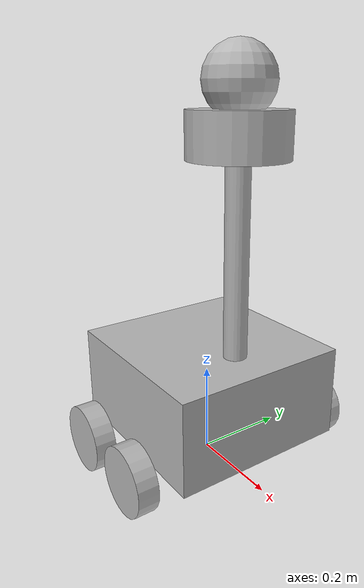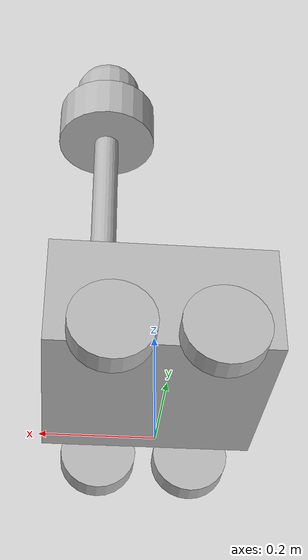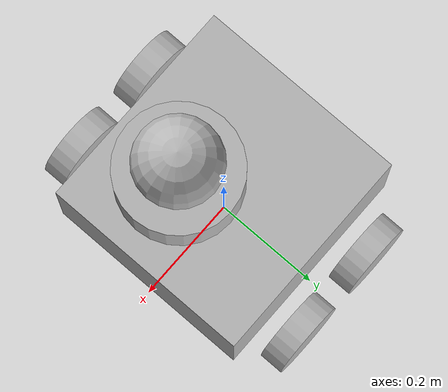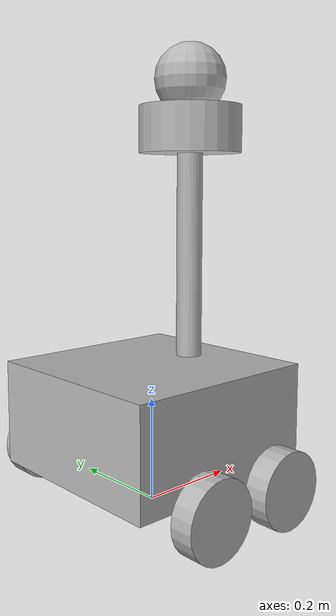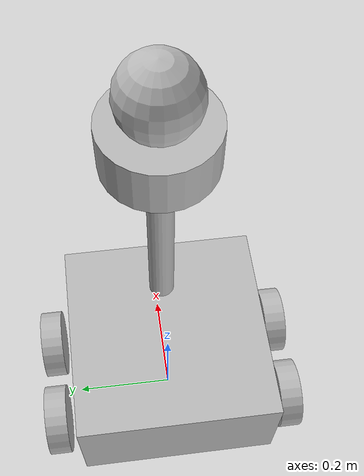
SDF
<?xml version='1.0'?>
<sdf version='1.4'>

  <model name="DelbonoKobra">

    <static>false</static>
    <link name='chassis'>

      <inertial>
        <mass>9</mass>
        <inertia>
          <ixx>9</ixx>
          <ixy></ixy>
          <ixz></ixz>
          <iyy>9</iyy>
          <iyz></iyz>
          <izz>9</izz>
        </inertia>
      </inertial>

      <pose>0 0 .1725 0 0 0</pose>
      <collision name='body'>
        <geometry>
          <box>
            <size>.4 .39 .2</size>
          </box>
        </geometry>
      </collision>

      <visual name='body'>
        <geometry>
          <box>
            <size>.4 .39 .2</size>
          </box>
        </geometry>
      </visual>

      <collision name='vert_arm'>
        <pose>.1 0 .3 0 0 0</pose>
        <geometry>
          <cylinder>
            <radius>.025</radius>
            <length>.4</length>
          </cylinder>
        </geometry>
      </collision>

      <visual name='vert_arm'>
        <pose>.1 0 .3 0 0 0</pose>
        <geometry>
          <cylinder>
            <radius>.025</radius>
            <length>.4</length>
          </cylinder>
        </geometry>
      </visual>

    </link>

    <link name='left_forw_wheel'>
      <pose>.09 .2475 .0725 0 1.5707 1.5707</pose>

      <inertial>
        <mass>1</mass>
        <inertia>
          <ixx>1</ixx>
          <ixy></ixy>
          <ixz></ixz>
          <iyy>1</iyy>
          <iyz></iyz>
          <izz>1</izz>
        </inertia>
      </inertial>

      <collision name='collision'>
        <geometry>
          <cylinder>
            <radius>.0725</radius>
            <length>.045</length>
          </cylinder>
        </geometry>
      </collision>

      <visual name='visual'>
        <geometry>
          <cylinder>
            <radius>.0725</radius>
            <length>.045</length>
          </cylinder>
        </geometry>
      </visual>
    </link>

    <joint type="revolute" name="left_forw_wheel_hinge">
      <pose>0 0 .0725 0 0 0</pose>
      <child>left_forw_wheel</child>
      <parent>chassis</parent>
      <axis>
        <xyz>0 1 0</xyz>
      </axis>
    </joint>

    <link name='right_forw_wheel'>
      <pose>.09 -0.2475 .0725 0 1.5707 1.5707</pose>

      <inertial>
        <mass>1</mass>
        <inertia>
          <ixx>1</ixx>
          <ixy></ixy>
          <ixz></ixz>
          <iyy>1</iyy>
          <iyz></iyz>
          <izz>1</izz>
        </inertia>
      </inertial>

      <collision name='collision'>
        <geometry>
          <cylinder>
            <radius>.0725</radius>
            <length>.045</length>
          </cylinder>
        </geometry>
        <surface>
          <friction>
            <ode>
              <mu>1</mu>
              <mu2>1</mu2>
              <slip1>0</slip1>
              <slip2>0</slip2>
            </ode>
          </friction>
        </surface>
      </collision>

      <visual name='visual'>
        <geometry>
          <cylinder>
            <radius>.0725</radius>
            <length>.045</length>
          </cylinder>
        </geometry>
      </visual>
    </link>

    <joint type="revolute" name="right_forw_wheel_hinge">
      <pose>0 0 .0725 0 0 0</pose>
      <child>right_forw_wheel</child>
      <parent>chassis</parent>
      <axis>
        <xyz>0 1 0</xyz>
      </axis>
    </joint>

    <link name='left_back_wheel'>
      <pose>-0.09 .2475 .0725 0 1.5707 1.5707</pose>

      <inertial>
        <mass>1</mass>
        <inertia>
          <ixx>1</ixx>
          <ixy></ixy>
          <ixz></ixz>
          <iyy>1</iyy>
          <iyz></iyz>
          <izz>1</izz>
        </inertia>
      </inertial>

      <collision name='collision'>
        <geometry>
          <cylinder>
            <radius>.0725</radius>
            <length>.045</length>
          </cylinder>
        </geometry>
        <surface>
          <friction>
            <ode>
              <mu>1</mu>
              <mu2>1</mu2>
              <slip1>0</slip1>
              <slip2>0</slip2>
            </ode>
          </friction>
        </surface>
      </collision>
      <visual name='visual'>
        <geometry>
          <cylinder>
            <radius>.0725</radius>
            <length>.045</length>
          </cylinder>
        </geometry>
      </visual>
    </link>

    <joint type="revolute" name="left_back_wheel_hinge">
      <pose>0 0 .0725 0 0 0</pose>
      <child>left_back_wheel</child>
      <parent>chassis</parent>
      <axis>
        <xyz>0 1 0</xyz>
      </axis>
    </joint>

    <link name='right_back_wheel'>
      <pose>-0.09 -0.2475 .0725 0 1.5707 1.5707</pose>

      <inertial>
        <mass>1</mass>
        <inertia>
          <ixx>1</ixx>
          <ixy></ixy>
          <ixz></ixz>
          <iyy>1</iyy>
          <iyz></iyz>
          <izz>1</izz>
        </inertia>
      </inertial>

      <collision name='collision'>
        <geometry>
          <cylinder>
            <radius>.0725</radius>
            <length>.045</length>
          </cylinder>
        </geometry>
        <surface>
          <friction>
            <ode>
              <mu>1</mu>
              <mu2>1</mu2>
              <slip1>0</slip1>
              <slip2>0</slip2>
            </ode>
          </friction>
        </surface>
      </collision>
      <visual name='visual'>
        <geometry>
          <cylinder>
            <radius>.0725</radius>
            <length>.045</length>
          </cylinder>
        </geometry>
      </visual>
    </link>

    <joint type="revolute" name="right_back_wheel_hinge">
      <pose>0 0 .0725 0 0 0</pose>
      <child>right_back_wheel</child>
      <parent>chassis</parent>
      <axis>
        <xyz>0 1 0</xyz>
      </axis>
    </joint>

    <link name='cam_base'>
      <pose>.1 0 .7175 0 0 0</pose>

      <inertial>
        <mass>0.5</mass>
        <inertia>
          <ixx>0.5</ixx>
          <ixy></ixy>
          <ixz></ixz>
          <iyy>0.5</iyy>
          <iyz></iyz>
          <izz>0.5</izz>
        </inertia>
      </inertial>

      <collision name='collision'>
        <geometry>
          <cylinder>
            <radius>.1</radius>
            <length>.09</length>
          </cylinder>
        </geometry>
      </collision>

      <visual name='visual'>
        <geometry>
          <cylinder>
            <radius>.1</radius>
            <length>.09</length>
          </cylinder>
        </geometry>
      </visual>

    </link>

    <joint type="revolute" name="pan_camera">
      <pose>0 0 0 0 0 0</pose>
      <child>cam_base</child>
      <parent>chassis</parent>
      <axis>
        <xyz>0 0 1</xyz>
      </axis>
    </joint>

    <link name='cam_supp'>
      <pose>.1 0 .8125 0 0 0</pose>

      <inertial>
        <mass>0.5</mass>
        <inertia>
          <ixx>0.5</ixx>
          <ixy></ixy>
          <ixz></ixz>
          <iyy>0.5</iyy>
          <iyz></iyz>
          <izz>0.5</izz>
        </inertia>
      </inertial>

      <collision name='collision'>
        <geometry>
          <sphere>
            <radius>0.07</radius>
          </sphere>
        </geometry>
        <surface>
          <friction>
            <ode>
              <mu>1</mu>
              <mu2>1</mu2>
              <slip1>0</slip1>
              <slip2>0</slip2>
            </ode>
          </friction>
        </surface>
      </collision>
      <visual name='visual'>
        <geometry>
          <sphere>
            <radius>0.07</radius>
          </sphere>
        </geometry>
      </visual>
    </link>

    <joint type="revolute" name="tilt_camera">
      <pose>0 0 0 0 0 0</pose>
      <child>cam_supp</child>
      <parent>cam_base</parent>
      <axis>
        <xyz>0 1 0</xyz>
      </axis>
    </joint>

    <plugin name="differential_drive_controller" filename="libdiff_drive_plugin.so">
    </plugin>

    <plugin name="pan_tilt_camera_controller" filename="libpan_tilt_camera_plugin.so">
    </plugin>

  </model>
</sdf>
